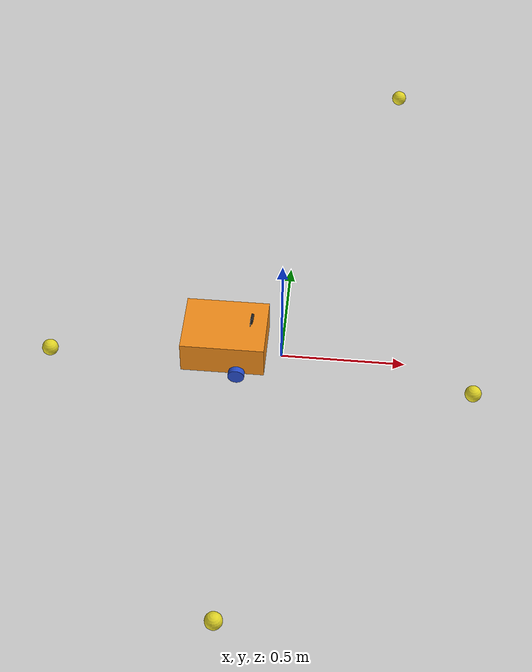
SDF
<sdf version="1.7">
 <world name="default">
  <light name="sun" type="directional">
   <pose>0 0 10 0 -0 0</pose>
   <diffuse>0.8 0.8 0.8 1</diffuse>
   <specular>0.2 0.2 0.2 1</specular>
   <attenuation>
    <range>1000</range>
    <constant>0.9</constant>
    <linear>0.01</linear>
    <quadratic>0.001</quadratic>
   </attenuation>
   <direction>-0.5 0.1 -0.9</direction>
   <spot><inner_angle>0</inner_angle><outer_angle>0</outer_angle><falloff>0</falloff></spot>
  </light>
  <model name="ground_plane">
   <static>1</static>
   <link name="link">
    <collision name="collision">
     <geometry><plane><normal>0 0 1</normal><size>100 100</size></plane></geometry>
     <surface>
      <contact><collide_bitmask>65535</collide_bitmask></contact>
      <friction><ode><mu>100</mu><mu2>50</mu2></ode></friction>
     </surface>
    </collision>
    <visual name="visual">
     <cast_shadows>0</cast_shadows>
     <geometry><plane><normal>0 0 1</normal><size>100 100</size></plane></geometry>
     <material>
      <script><uri>file://media/materials/scripts/gazebo.material</uri><name>Gazebo/Grey</name></script>
     </material>
    </visual>
   </link>
  </model>
  <gravity>0 0 -9.8</gravity>
  <magnetic_field>6e-06 2.3e-05 -4.2e-05</magnetic_field>
  <atmosphere type="adiabatic"/>
  <physics type="ode">
   <max_step_size>0.001</max_step_size>
   <real_time_factor>1</real_time_factor>
   <real_time_update_rate>1000</real_time_update_rate>
  </physics>
  <scene><ambient>0.4 0.4 0.4 1</ambient><background>0.7 0.7 0.7 1</background><shadows>1</shadows></scene>
  <spherical_coordinates>
   <surface_model>EARTH_WGS84</surface_model>
   <latitude_deg>0</latitude_deg>
   <longitude_deg>0</longitude_deg>
   <elevation>0</elevation>
   <heading_deg>0</heading_deg>
  </spherical_coordinates>
  <audio><device>default</device></audio>
  <model name="my_bot">
   <link name="base_link">
    <inertial>
     <pose>-0.060314 0 0.057392 0 -0 0</pose>
     <mass>0.51</mass>
     <inertia>
      <ixx>0.00378586</ixx>
      <ixy>0</ixy>
      <ixz>-7.43627e-05</ixz>
      <iyy>0.00561975</iyy>
      <iyz>0</iyz>
      <izz>0.00768637</izz>
     </inertia>
    </inertial>
    <collision name="base_link_fixed_joint_lump__chassis_collision">
     <pose>-0.0585 0 0.059 0 -0 0</pose>
     <geometry><box><size>0.335 0.265 0.138</size></box></geometry>
    </collision>
    <collision name="base_link_fixed_joint_lump__caster_wheel_collision_1">
     <pose>-0.151 0 -0.023 0 -0 0</pose>
     <geometry><sphere><radius>0.01</radius></sphere></geometry>
     <surface><friction><ode><mu>0.001</mu><mu2>0.001</mu2></ode></friction></surface>
    </collision>
    <visual name="base_link_fixed_joint_lump__chassis_visual">
     <pose>-0.0585 0 0.059 0 -0 0</pose>
     <geometry><box><size>0.335 0.265 0.138</size></box></geometry>
     <material>
      <script><name>Gazebo/Orange</name><uri>file://media/materials/scripts/gazebo.material</uri></script>
     </material>
    </visual>
    <visual name="base_link_fixed_joint_lump__camera_link_visual_1">
     <pose>0.05 0 0.171 0 0.18 0</pose>
     <geometry><box><size>0.01 0.03 0.03</size></box></geometry>
     <material>
      <script><name>Gazebo/Black</name><uri>file://media/materials/scripts/gazebo.material</uri></script>
     </material>
    </visual>
    <visual name="base_link_fixed_joint_lump__camera_link_visual_2">
     <pose>0.041049 0 0.121808 0 0.18 0</pose>
     <geometry><cylinder><length>0.1</length><radius>0.002</radius></cylinder></geometry>
     <material>
      <script><name>Gazebo/Black</name><uri>file://media/materials/scripts/gazebo.material</uri></script>
     </material>
    </visual>
    <visual name="base_link_fixed_joint_lump__caster_wheel_visual_3">
     <pose>-0.151 0 -0.023 0 -0 0</pose>
     <geometry><sphere><radius>0.01</radius></sphere></geometry>
     <material>
      <script><name>Gazebo/White</name><uri>file://media/materials/scripts/gazebo.material</uri></script>
     </material>
    </visual>
    <sensor name="camera" type="camera">
     <visualize>1</visualize>
     <update_rate>10</update_rate>
     <camera>
      <horizontal_fov>1.089</horizontal_fov>
      <image><format>R8G8B8</format><width>640</width><height>480</height></image>
      <clip><near>0.05</near><far>8</far></clip>
     </camera>
     <plugin name="camera_controller" filename="libgazebo_ros_camera.so">
      <frame_name>camera_link_optical</frame_name>
     </plugin>
     <pose>0.05 0 0.171 0 0.18 0</pose>
    </sensor>
   </link>
   <joint name="left_wheel_joint" type="revolute">
    <pose relative_to="base_link">0 0.1485 0 -1.5708 0 0</pose>
    <parent>base_link</parent>
    <child>left_wheel</child>
    <axis>
     <xyz>0 0 1</xyz>
     <limit><lower>-1e+16</lower><upper>1e+16</upper></limit>
     <dynamics><spring_reference>0</spring_reference><spring_stiffness>0</spring_stiffness></dynamics>
    </axis>
   </joint>
   <link name="left_wheel">
    <pose relative_to="left_wheel_joint">0 0 0 0 -0 0</pose>
    <inertial>
     <mass>0.05</mass>
     <inertia>
      <ixx>1.64292e-05</ixx>
      <ixy>0</ixy>
      <ixz>0</ixz>
      <iyy>1.64292e-05</iyy>
      <iyz>0</iyz>
      <izz>2.7225e-05</izz>
     </inertia>
    </inertial>
    <collision name="left_wheel_collision">
     <geometry><sphere><radius>0.033</radius></sphere></geometry>
    </collision>
    <visual name="left_wheel_visual">
     <geometry><cylinder><length>0.026</length><radius>0.033</radius></cylinder></geometry>
     <material>
      <script><name>Gazebo/Blue</name><uri>file://media/materials/scripts/gazebo.material</uri></script>
     </material>
    </visual>
   </link>
   <joint name="right_wheel_joint" type="revolute">
    <pose relative_to="base_link">0 -0.1485 0 1.5708 -0 0</pose>
    <parent>base_link</parent>
    <child>right_wheel</child>
    <axis>
     <xyz>0 0 -1</xyz>
     <limit><lower>-1e+16</lower><upper>1e+16</upper></limit>
     <dynamics><spring_reference>0</spring_reference><spring_stiffness>0</spring_stiffness></dynamics>
    </axis>
   </joint>
   <link name="right_wheel">
    <pose relative_to="right_wheel_joint">0 0 0 0 -0 0</pose>
    <inertial>
     <mass>0.05</mass>
     <inertia>
      <ixx>1.64292e-05</ixx>
      <ixy>0</ixy>
      <ixz>0</ixz>
      <iyy>1.64292e-05</iyy>
      <iyz>0</iyz>
      <izz>2.7225e-05</izz>
     </inertia>
    </inertial>
    <collision name="right_wheel_collision">
     <geometry><sphere><radius>0.033</radius></sphere></geometry>
    </collision>
    <visual name="right_wheel_visual">
     <geometry><cylinder><length>0.026</length><radius>0.033</radius></cylinder></geometry>
     <material>
      <script><name>Gazebo/Blue</name><uri>file://media/materials/scripts/gazebo.material</uri></script>
     </material>
    </visual>
   </link>
   <static>0</static>
   <plugin name="diff_drive" filename="libgazebo_ros_diff_drive.so">
    <left_joint>left_wheel_joint</left_joint>
    <right_joint>right_wheel_joint</right_joint>
    <wheel_separation>0.297</wheel_separation>
    <wheel_diameter>0.066</wheel_diameter>
    <max_wheel_torque>200</max_wheel_torque>
    <max_wheel_acceleration>10.0</max_wheel_acceleration>
    <odometry_frame>odom</odometry_frame>
    <robot_base_frame>base_link</robot_base_frame>
    <publish_odom>1</publish_odom>
    <publish_odom_tf>1</publish_odom_tf>
    <publish_wheel_tf>1</publish_wheel_tf>
   </plugin>
   <pose>-0.169468 0.000582 0.032995 0 3.2e-05 0.002316</pose>
  </model>
  <model name="tennis_ball">
   <link name="link">
    <inertial>
     <mass>1</mass>
     <inertia><ixx>0.1</ixx><ixy>0</ixy><ixz>0</ixz><iyy>0.1</iyy><iyz>0</iyz><izz>0.1</izz></inertia>
    </inertial>
    <visual name="visual">
     <geometry><sphere><radius>0.033</radius></sphere></geometry>
     <material>
      <script><name>Gazebo/Yellow</name><uri>file://media/materials/scripts/gazebo.material</uri></script>
      <shader type="pixel"><normal_map>__default__</normal_map></shader>
      <ambient>1 1 0 1</ambient>
      <diffuse>1 1 0 1</diffuse>
      <emissive>0 0 0 1</emissive>
     </material>
    </visual>
    <collision name="collision">
     <geometry><sphere><radius>0.033</radius></sphere></geometry>
     <surface>
      <friction>
       <ode><mu>1</mu><mu2>1</mu2><fdir1>0 0 0</fdir1><slip1>0</slip1><slip2>0</slip2></ode>
       <torsional>
        <coefficient>1</coefficient>
        <patch_radius>0</patch_radius>
        <surface_radius>0</surface_radius>
        <use_patch_radius>1</use_patch_radius>
        <ode><slip>0</slip></ode>
       </torsional>
      </friction>
      <bounce><restitution_coefficient>0</restitution_coefficient><threshold>1e+06</threshold></bounce>
      <contact>
       <collide_without_contact>0</collide_without_contact>
       <collide_without_contact_bitmask>1</collide_without_contact_bitmask>
       <collide_bitmask>1</collide_bitmask>
       <ode>
        <soft_cfm>0</soft_cfm>
        <soft_erp>0.2</soft_erp>
        <kp>1e+13</kp>
        <kd>1</kd>
        <max_vel>0.01</max_vel>
        <min_depth>0</min_depth>
       </ode>
       <bullet>
        <split_impulse>1</split_impulse>
        <split_impulse_penetration_threshold>-0.01</split_impulse_penetration_threshold>
        <soft_cfm>0</soft_cfm>
        <soft_erp>0.2</soft_erp>
        <kp>1e+13</kp>
        <kd>1</kd>
       </bullet>
      </contact>
     </surface>
    </collision>
   </link>
   <static>0</static>
   <pose>0.772668 -0.157617 0.033 0 -0 0</pose>
  </model>
  <model name="tennis_ball_0">
   <link name="link">
    <inertial>
     <mass>1</mass>
     <inertia><ixx>0.1</ixx><ixy>0</ixy><ixz>0</ixz><iyy>0.1</iyy><iyz>0</iyz><izz>0.1</izz></inertia>
    </inertial>
    <visual name="visual">
     <geometry><sphere><radius>0.033</radius></sphere></geometry>
     <material>
      <script><name>Gazebo/Yellow</name><uri>file://media/materials/scripts/gazebo.material</uri></script>
      <shader type="pixel"><normal_map>__default__</normal_map></shader>
      <ambient>1 1 0 1</ambient>
      <diffuse>1 1 0 1</diffuse>
      <emissive>0 0 0 1</emissive>
     </material>
    </visual>
    <collision name="collision">
     <geometry><sphere><radius>0.033</radius></sphere></geometry>
     <surface>
      <friction>
       <ode><mu>1</mu><mu2>1</mu2><fdir1>0 0 0</fdir1><slip1>0</slip1><slip2>0</slip2></ode>
       <torsional>
        <coefficient>1</coefficient>
        <patch_radius>0</patch_radius>
        <surface_radius>0</surface_radius>
        <use_patch_radius>1</use_patch_radius>
        <ode><slip>0</slip></ode>
       </torsional>
      </friction>
      <bounce><restitution_coefficient>0</restitution_coefficient><threshold>1e+06</threshold></bounce>
      <contact>
       <collide_without_contact>0</collide_without_contact>
       <collide_without_contact_bitmask>1</collide_without_contact_bitmask>
       <collide_bitmask>1</collide_bitmask>
       <ode>
        <soft_cfm>0</soft_cfm>
        <soft_erp>0.2</soft_erp>
        <kp>1e+13</kp>
        <kd>1</kd>
        <max_vel>0.01</max_vel>
        <min_depth>0</min_depth>
       </ode>
       <bullet>
        <split_impulse>1</split_impulse>
        <split_impulse_penetration_threshold>-0.01</split_impulse_penetration_threshold>
        <soft_cfm>0</soft_cfm>
        <soft_erp>0.2</soft_erp>
        <kp>1e+13</kp>
        <kd>1</kd>
       </bullet>
      </contact>
     </surface>
    </collision>
   </link>
   <static>0</static>
   <pose>0.427011 1.70741 0.033 0 -0 0</pose>
  </model>
  <model name="tennis_ball_1">
   <link name="link">
    <inertial>
     <mass>1</mass>
     <inertia><ixx>0.1</ixx><ixy>0</ixy><ixz>0</ixz><iyy>0.1</iyy><iyz>0</iyz><izz>0.1</izz></inertia>
    </inertial>
    <visual name="visual">
     <geometry><sphere><radius>0.033</radius></sphere></geometry>
     <material>
      <script><name>Gazebo/Yellow</name><uri>file://media/materials/scripts/gazebo.material</uri></script>
      <shader type="pixel"><normal_map>__default__</normal_map></shader>
      <ambient>1 1 0 1</ambient>
      <diffuse>1 1 0 1</diffuse>
      <emissive>0 0 0 1</emissive>
     </material>
    </visual>
    <collision name="collision">
     <geometry><sphere><radius>0.033</radius></sphere></geometry>
     <surface>
      <friction>
       <ode><mu>1</mu><mu2>1</mu2><fdir1>0 0 0</fdir1><slip1>0</slip1><slip2>0</slip2></ode>
       <torsional>
        <coefficient>1</coefficient>
        <patch_radius>0</patch_radius>
        <surface_radius>0</surface_radius>
        <use_patch_radius>1</use_patch_radius>
        <ode><slip>0</slip></ode>
       </torsional>
      </friction>
      <bounce><restitution_coefficient>0</restitution_coefficient><threshold>1e+06</threshold></bounce>
      <contact>
       <collide_without_contact>0</collide_without_contact>
       <collide_without_contact_bitmask>1</collide_without_contact_bitmask>
       <collide_bitmask>1</collide_bitmask>
       <ode>
        <soft_cfm>0</soft_cfm>
        <soft_erp>0.2</soft_erp>
        <kp>1e+13</kp>
        <kd>1</kd>
        <max_vel>0.01</max_vel>
        <min_depth>0</min_depth>
       </ode>
       <bullet>
        <split_impulse>1</split_impulse>
        <split_impulse_penetration_threshold>-0.01</split_impulse_penetration_threshold>
        <soft_cfm>0</soft_cfm>
        <soft_erp>0.2</soft_erp>
        <kp>1e+13</kp>
        <kd>1</kd>
       </bullet>
      </contact>
     </surface>
    </collision>
   </link>
   <static>0</static>
   <pose>-0.124894 -1.27852 0.033 0 -0 0</pose>
  </model>
  <model name="tennis_ball_2">
   <link name="link">
    <inertial>
     <mass>1</mass>
     <inertia><ixx>0.1</ixx><ixy>0</ixy><ixz>0</ixz><iyy>0.1</iyy><iyz>0</iyz><izz>0.1</izz></inertia>
    </inertial>
    <visual name="visual">
     <geometry><sphere><radius>0.033</radius></sphere></geometry>
     <material>
      <script><name>Gazebo/Yellow</name><uri>file://media/materials/scripts/gazebo.material</uri></script>
      <shader type="pixel"><normal_map>__default__</normal_map></shader>
      <ambient>1 1 0 1</ambient>
      <diffuse>1 1 0 1</diffuse>
      <emissive>0 0 0 1</emissive>
     </material>
    </visual>
    <collision name="collision">
     <geometry><sphere><radius>0.033</radius></sphere></geometry>
     <surface>
      <friction>
       <ode><mu>1</mu><mu2>1</mu2><fdir1>0 0 0</fdir1><slip1>0</slip1><slip2>0</slip2></ode>
       <torsional>
        <coefficient>1</coefficient>
        <patch_radius>0</patch_radius>
        <surface_radius>0</surface_radius>
        <use_patch_radius>1</use_patch_radius>
        <ode><slip>0</slip></ode>
       </torsional>
      </friction>
      <bounce><restitution_coefficient>0</restitution_coefficient><threshold>1e+06</threshold></bounce>
      <contact>
       <collide_without_contact>0</collide_without_contact>
       <collide_without_contact_bitmask>1</collide_without_contact_bitmask>
       <collide_bitmask>1</collide_bitmask>
       <ode>
        <soft_cfm>0</soft_cfm>
        <soft_erp>0.2</soft_erp>
        <kp>1e+13</kp>
        <kd>1</kd>
        <max_vel>0.01</max_vel>
        <min_depth>0</min_depth>
       </ode>
       <bullet>
        <split_impulse>1</split_impulse>
        <split_impulse_penetration_threshold>-0.01</split_impulse_penetration_threshold>
        <soft_cfm>0</soft_cfm>
        <soft_erp>0.2</soft_erp>
        <kp>1e+13</kp>
        <kd>1</kd>
       </bullet>
      </contact>
     </surface>
    </collision>
   </link>
   <static>0</static>
   <pose>-0.936614 -0.073401 0.033 0 -0 0</pose>
  </model>
 </world>
</sdf>
